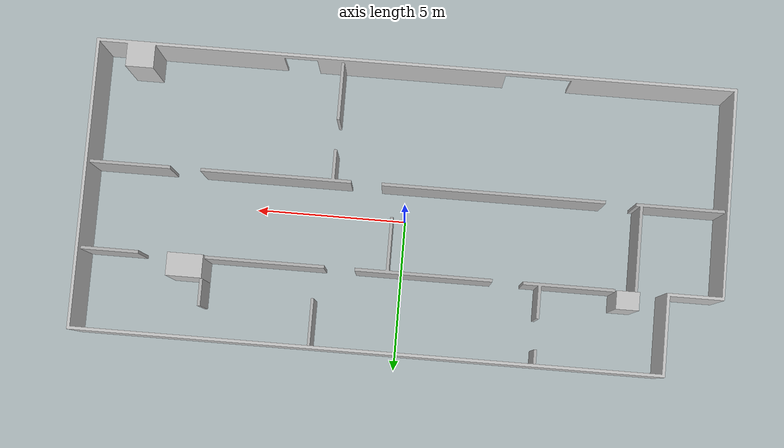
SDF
<?xml version="1.0"?>
<sdf version="1.5">
  <model name="small_building">
    <pose>-10.5 -5.0 0 0 0 0</pose>
    <static>true</static>

    <link name="exterior_link">
      <collision name="base">
        <geometry>
          <mesh>
            <uri>model://small_building/meshes/Small_BuildingV3_exterior.dae</uri>
          </mesh>
        </geometry>
      </collision>
      <visual name="visual">
        <geometry>
          <mesh>
            <uri>model://small_building/meshes/Small_BuildingV3_exterior.dae</uri>
          </mesh>
        </geometry>
      </visual>
    </link>

    <link name="interior_link">
      <collision name="base">
        <geometry>
          <mesh>
            <uri>model://small_building/meshes/Small_BuildingV3_interior.dae</uri>
          </mesh>
        </geometry>
      </collision>
      <visual name="visual">
        <geometry>
          <mesh>
            <uri>model://small_building/meshes/Small_BuildingV3_interior.dae</uri>
          </mesh>
        </geometry>
      </visual>
    </link>

  </model>
</sdf>
